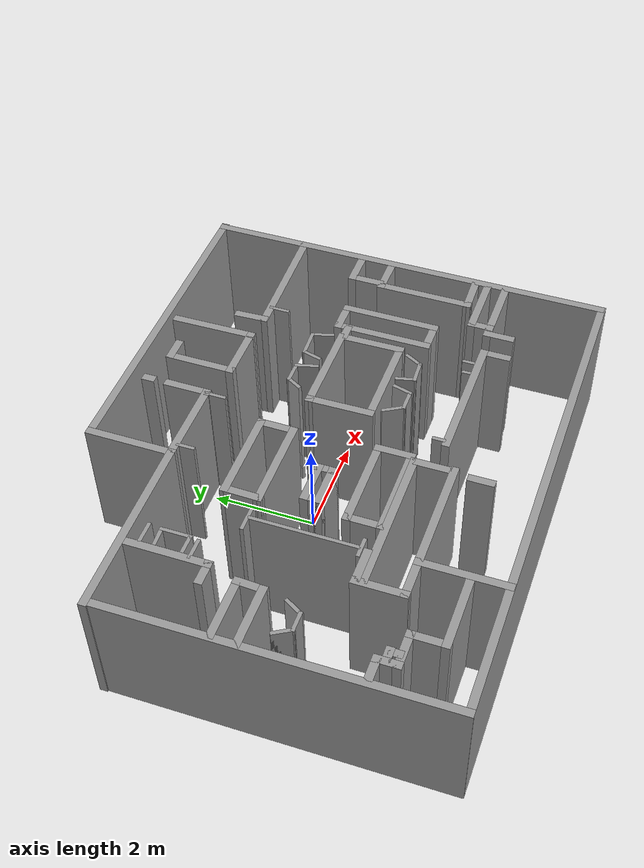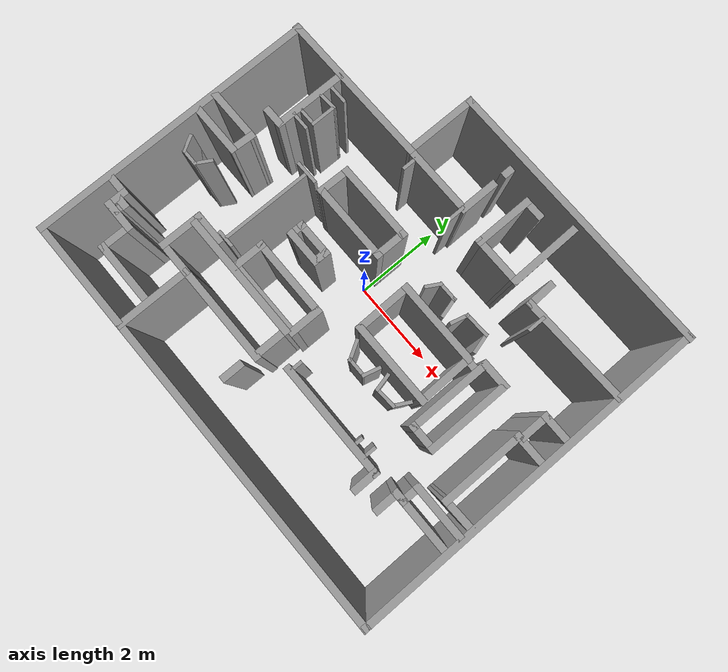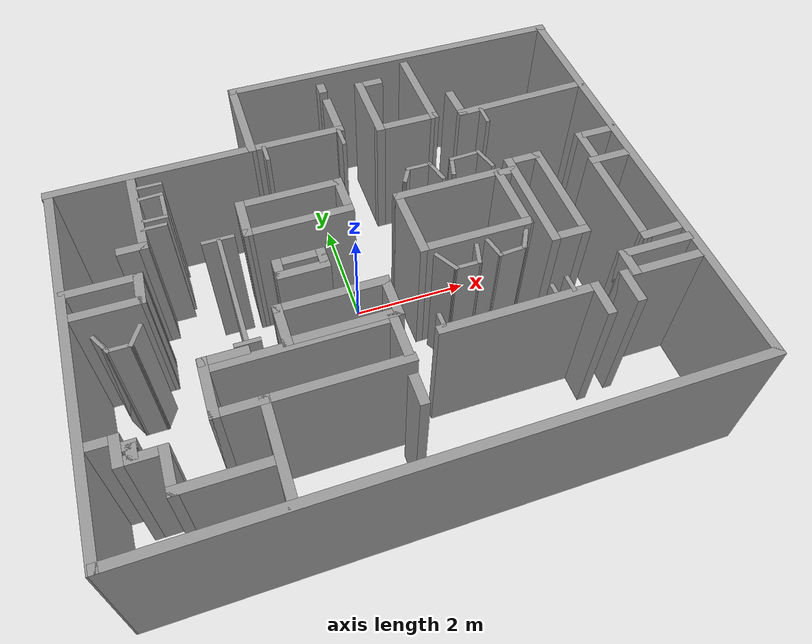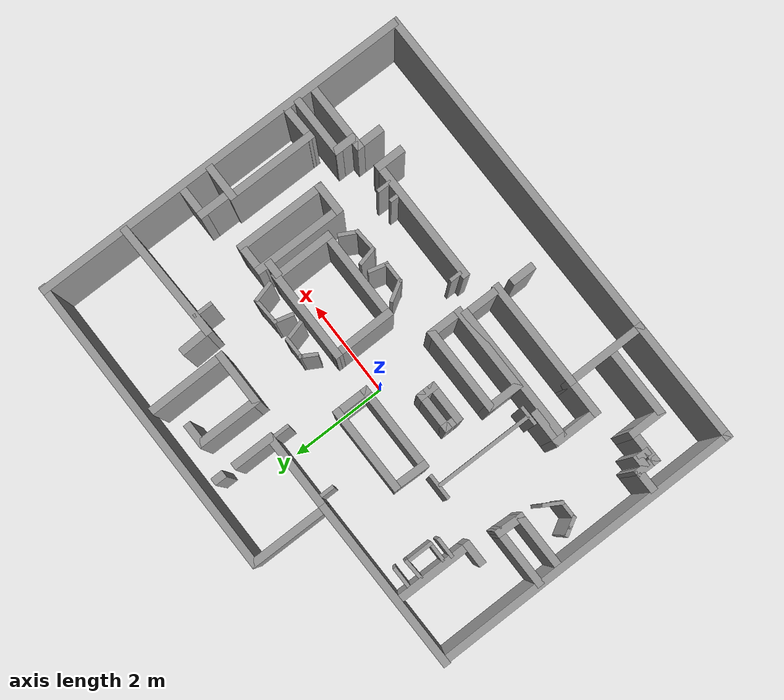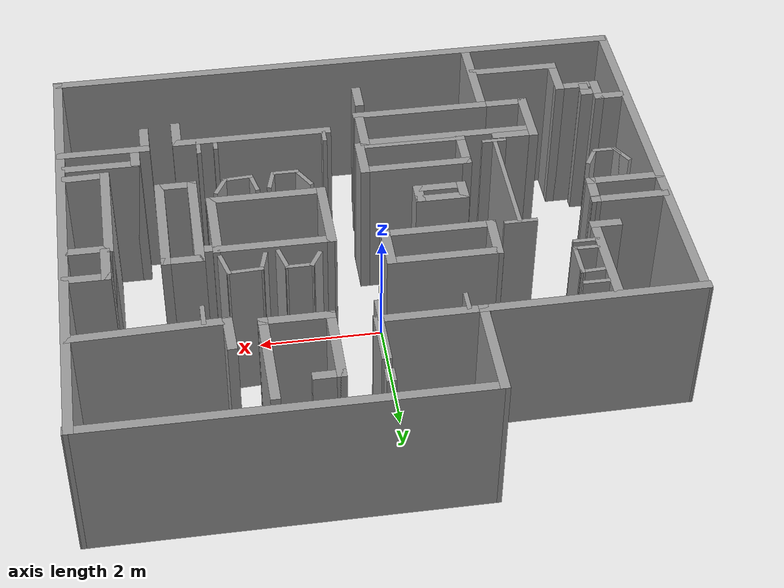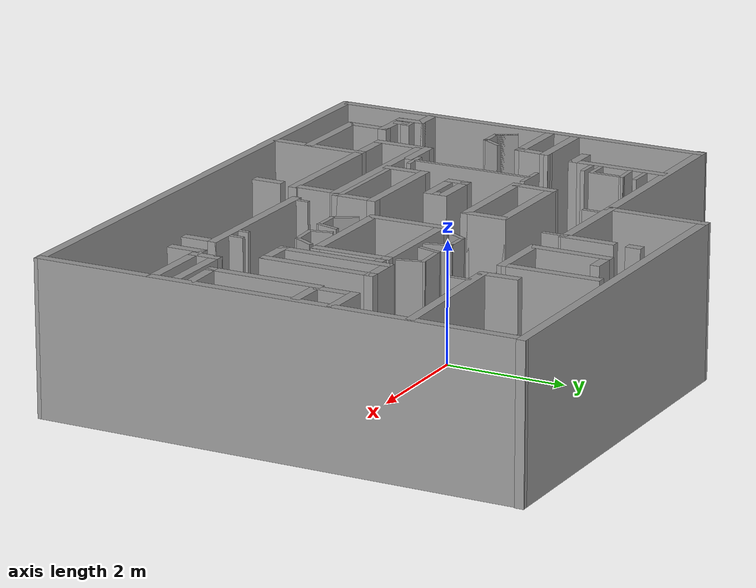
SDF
<sdf version="1.6">
 <model name="room4">
  <pose>0.183294 -0.251584 0 0 -0 0</pose>
  <link name="Wall_0">
   <collision name="Wall_0_Collision">
    <geometry><box><size>8.014 0.15 2.5</size></box></geometry>
    <pose>0 0 1.25 0 -0 0</pose>
   </collision>
   <visual name="Wall_0_Visual">
    <pose>0 0 1.25 0 -0 0</pose>
    <geometry><box><size>8.014 0.15 2.5</size></box></geometry>
    <material>
     <script><uri>file://media/materials/scripts/gazebo.material</uri><name>Gazebo/Grey</name></script>
     <ambient>1 1 1 1</ambient>
    </material>
    <meta><layer>0</layer></meta>
   </visual>
   <pose>4.74429 0.03461 0 0 -0 -1.56965</pose>
  </link>
  <link name="Wall_1">
   <collision name="Wall_1_Collision">
    <geometry><box><size>9.58911 0.15 2.5</size></box></geometry>
    <pose>0 0 1.25 0 -0 0</pose>
   </collision>
   <visual name="Wall_1_Visual">
    <pose>0 0 1.25 0 -0 0</pose>
    <geometry><box><size>9.58911 0.15 2.5</size></box></geometry>
    <material>
     <script><uri>file://media/materials/scripts/gazebo.material</uri><name>Gazebo/Grey</name></script>
     <ambient>1 1 1 1</ambient>
    </material>
    <meta><layer>0</layer></meta>
   </visual>
   <pose>0.029286 -3.94339 0 0 -0 -3.13672</pose>
  </link>
  <link name="Wall_10">
   <collision name="Wall_10_Collision">
    <geometry><box><size>1.65013 0.15 2.5</size></box></geometry>
    <pose>0 0 1.25 0 -0 0</pose>
   </collision>
   <visual name="Wall_10_Visual">
    <pose>0 0 1.25 0 -0 0</pose>
    <geometry><box><size>1.65013 0.15 2.5</size></box></geometry>
    <material>
     <script><uri>file://media/materials/scripts/gazebo.material</uri><name>Gazebo/Grey</name></script>
     <ambient>1 1 1 1</ambient>
    </material>
    <meta><layer>0</layer></meta>
   </visual>
   <pose>1.86988 2.9697 0 0 -0 -1.55746</pose>
  </link>
  <link name="Wall_101">
   <collision name="Wall_101_Collision">
    <geometry><box><size>0.5 0.15 2.5</size></box></geometry>
    <pose>0 0 1.25 0 -0 0</pose>
   </collision>
   <visual name="Wall_101_Visual">
    <pose>0 0 1.25 0 -0 0</pose>
    <geometry><box><size>0.5 0.15 2.5</size></box></geometry>
    <material>
     <script><uri>file://media/materials/scripts/gazebo.material</uri><name>Gazebo/Grey</name></script>
     <ambient>1 1 1 1</ambient>
    </material>
    <meta><layer>0</layer></meta>
   </visual>
   <pose>-0.238275 -2.90211 0 0 -0 1.5708</pose>
  </link>
  <link name="Wall_103">
   <collision name="Wall_103_Collision">
    <geometry><box><size>0.85 0.15 2.5</size></box></geometry>
    <pose>0 0 1.25 0 -0 0</pose>
   </collision>
   <visual name="Wall_103_Visual">
    <pose>0 0 1.25 0 -0 0</pose>
    <geometry><box><size>0.85 0.15 2.5</size></box></geometry>
    <material>
     <script><uri>file://media/materials/scripts/gazebo.material</uri><name>Gazebo/Grey</name></script>
     <ambient>1 1 1 1</ambient>
    </material>
    <meta><layer>0</layer></meta>
   </visual>
   <pose>-1.20078 -0.157139 0 0 -0 0</pose>
  </link>
  <link name="Wall_105">
   <collision name="Wall_105_Collision">
    <geometry><box><size>0.4 0.15 2.5</size></box></geometry>
    <pose>0 0 1.25 0 -0 0</pose>
   </collision>
   <visual name="Wall_105_Visual">
    <pose>0 0 1.25 0 -0 0</pose>
    <geometry><box><size>0.4 0.15 2.5</size></box></geometry>
    <material>
     <script><uri>file://media/materials/scripts/gazebo.material</uri><name>Gazebo/Grey</name></script>
     <ambient>1 1 1 1</ambient>
    </material>
    <meta><layer>0</layer></meta>
   </visual>
   <pose>-0.850776 -0.282139 0 0 -0 -1.5708</pose>
  </link>
  <link name="Wall_109">
   <collision name="Wall_109_Collision">
    <geometry><box><size>0.4 0.15 2.5</size></box></geometry>
    <pose>0 0 1.25 0 -0 0</pose>
   </collision>
   <visual name="Wall_109_Visual">
    <pose>0 0 1.25 0 -0 0</pose>
    <geometry><box><size>0.4 0.15 2.5</size></box></geometry>
    <material>
     <script><uri>file://media/materials/scripts/gazebo.material</uri><name>Gazebo/Grey</name></script>
     <ambient>1 1 1 1</ambient>
    </material>
    <meta><layer>0</layer></meta>
   </visual>
   <pose>-1.55078 -0.282139 0 0 -0 -1.5708</pose>
  </link>
  <link name="Wall_11">
   <collision name="Wall_11_Collision">
    <geometry><box><size>1.15 0.15 2.5</size></box></geometry>
    <pose>0 0 1.25 0 -0 0</pose>
   </collision>
   <visual name="Wall_11_Visual">
    <pose>0 0 1.25 0 -0 0</pose>
    <geometry><box><size>1.15 0.15 2.5</size></box></geometry>
    <material>
     <script><uri>file://media/materials/scripts/gazebo.material</uri><name>Gazebo/Grey</name></script>
     <ambient>1 1 1 1</ambient>
    </material>
    <meta><layer>0</layer></meta>
   </visual>
   <pose>1.37988 2.2197 0 0 -0 3.14159</pose>
  </link>
  <link name="Wall_116">
   <collision name="Wall_116_Collision">
    <geometry><box><size>0.85 0.15 2.5</size></box></geometry>
    <pose>0 0 1.25 0 -0 0</pose>
   </collision>
   <visual name="Wall_116_Visual">
    <pose>0 0 1.25 0 -0 0</pose>
    <geometry><box><size>0.85 0.15 2.5</size></box></geometry>
    <material>
     <script><uri>file://media/materials/scripts/gazebo.material</uri><name>Gazebo/Grey</name></script>
     <ambient>1 1 1 1</ambient>
    </material>
    <meta><layer>0</layer></meta>
   </visual>
   <pose>-1.20078 -0.407139 0 0 -0 0</pose>
  </link>
  <link name="Wall_118">
   <collision name="Wall_118_Collision">
    <geometry><box><size>0.35 0.07 2.5</size></box></geometry>
    <pose>0 0 1.25 0 -0 0</pose>
   </collision>
   <visual name="Wall_118_Visual">
    <pose>0 0 1.25 0 -0 0</pose>
    <geometry><box><size>0.35 0.07 2.5</size></box></geometry>
    <material>
     <script><uri>file://media/materials/scripts/gazebo.material</uri><name>Gazebo/Grey</name></script>
     <ambient>1 1 1 1</ambient>
    </material>
    <meta><layer>0</layer></meta>
   </visual>
   <pose>-1.15474 2.22246 0 0 -0 1.5708</pose>
  </link>
  <link name="Wall_126">
   <collision name="Wall_126_Collision">
    <geometry><box><size>0.43 0.07 2.5</size></box></geometry>
    <pose>0 0 1.25 0 -0 0</pose>
   </collision>
   <visual name="Wall_126_Visual">
    <pose>0 0 1.25 0 -0 0</pose>
    <geometry><box><size>0.43 0.07 2.5</size></box></geometry>
    <material>
     <script><uri>file://media/materials/scripts/gazebo.material</uri><name>Gazebo/Grey</name></script>
     <ambient>1 1 1 1</ambient>
    </material>
    <meta><layer>0</layer></meta>
   </visual>
   <pose>0.176827 2.23103 0 0 -0 -1.5708</pose>
  </link>
  <link name="Wall_128">
   <collision name="Wall_128_Collision">
    <geometry><box><size>0.4 0.07 2.5</size></box></geometry>
    <pose>0 0 1.25 0 -0 0</pose>
   </collision>
   <visual name="Wall_128_Visual">
    <pose>0 0 1.25 0 -0 0</pose>
    <geometry><box><size>0.4 0.07 2.5</size></box></geometry>
    <material>
     <script><uri>file://media/materials/scripts/gazebo.material</uri><name>Gazebo/Grey</name></script>
     <ambient>1 1 1 1</ambient>
    </material>
    <meta><layer>0</layer></meta>
   </visual>
   <pose>2.73621 1.96934 0 0 -0 -1.5708</pose>
  </link>
  <link name="Wall_13">
   <collision name="Wall_13_Collision">
    <geometry><box><size>1.35 0.15 2.5</size></box></geometry>
    <pose>0 0 1.25 0 -0 0</pose>
   </collision>
   <visual name="Wall_13_Visual">
    <pose>0 0 1.25 0 -0 0</pose>
    <geometry><box><size>1.35 0.15 2.5</size></box></geometry>
    <material>
     <script><uri>file://media/materials/scripts/gazebo.material</uri><name>Gazebo/Grey</name></script>
     <ambient>1 1 1 1</ambient>
    </material>
    <meta><layer>0</layer></meta>
   </visual>
   <pose>0.87988 2.8197 0 0 -0 1.5708</pose>
  </link>
  <link name="Wall_130">
   <collision name="Wall_130_Collision">
    <geometry><box><size>2.6 0.15 2.5</size></box></geometry>
    <pose>0 0 1.25 0 -0 0</pose>
   </collision>
   <visual name="Wall_130_Visual">
    <pose>0 0 1.25 0 -0 0</pose>
    <geometry><box><size>2.6 0.15 2.5</size></box></geometry>
    <material>
     <script><uri>file://media/materials/scripts/gazebo.material</uri><name>Gazebo/Grey</name></script>
     <ambient>1 1 1 1</ambient>
    </material>
    <meta><layer>0</layer></meta>
   </visual>
   <pose>1.62664 -2.08518 0 0 -0 0</pose>
  </link>
  <link name="Wall_132">
   <collision name="Wall_132_Collision">
    <geometry><box><size>0.25 0.07 2.5</size></box></geometry>
    <pose>0 0 1.25 0 -0 0</pose>
   </collision>
   <visual name="Wall_132_Visual">
    <pose>0 0 1.25 0 -0 0</pose>
    <geometry><box><size>0.25 0.07 2.5</size></box></geometry>
    <material>
     <script><uri>file://media/materials/scripts/gazebo.material</uri><name>Gazebo/Grey</name></script>
     <ambient>1 1 1 1</ambient>
    </material>
    <meta><layer>0</layer></meta>
   </visual>
   <pose>0.453516 -1.93307 0 0 -0 -1.5708</pose>
  </link>
  <link name="Wall_134">
   <collision name="Wall_134_Collision">
    <geometry><box><size>0.170242 0.07 2.5</size></box></geometry>
    <pose>0 0 1.25 0 -0 0</pose>
   </collision>
   <visual name="Wall_134_Visual">
    <pose>0 0 1.25 0 -0 0</pose>
    <geometry><box><size>0.170242 0.07 2.5</size></box></geometry>
    <material>
     <script><uri>file://media/materials/scripts/gazebo.material</uri><name>Gazebo/Grey</name></script>
     <ambient>1 1 1 1</ambient>
    </material>
    <meta><layer>0</layer></meta>
   </visual>
   <pose>2.23471 -1.92742 0 0 -0 -1.5708</pose>
  </link>
  <link name="Wall_136">
   <collision name="Wall_136_Collision">
    <geometry><box><size>0.3 0.07 2.5</size></box></geometry>
    <pose>0 0 1.25 0 -0 0</pose>
   </collision>
   <visual name="Wall_136_Visual">
    <pose>0 0 1.25 0 -0 0</pose>
    <geometry><box><size>0.3 0.07 2.5</size></box></geometry>
    <material>
     <script><uri>file://media/materials/scripts/gazebo.material</uri><name>Gazebo/Grey</name></script>
     <ambient>1 1 1 1</ambient>
    </material>
    <meta><layer>0</layer></meta>
   </visual>
   <pose>2.51095 -1.92354 0 0 -0 -1.5708</pose>
  </link>
  <link name="Wall_138">
   <collision name="Wall_138_Collision">
    <geometry><box><size>0.6 0.15 2.5</size></box></geometry>
    <pose>0 0 1.25 0 -0 0</pose>
   </collision>
   <visual name="Wall_138_Visual">
    <pose>0 0 1.25 0 -0 0</pose>
    <geometry><box><size>0.6 0.15 2.5</size></box></geometry>
    <material>
     <script><uri>file://media/materials/scripts/gazebo.material</uri><name>Gazebo/Grey</name></script>
     <ambient>1 1 1 1</ambient>
    </material>
    <meta><layer>0</layer></meta>
   </visual>
   <pose>2.85164 -2.31018 0 0 -0 -1.5708</pose>
  </link>
  <link name="Wall_140">
   <collision name="Wall_140_Collision">
    <geometry><box><size>1.5 0.15 2.5</size></box></geometry>
    <pose>0 0 1.25 0 -0 0</pose>
   </collision>
   <visual name="Wall_140_Visual">
    <pose>0 0 1.25 0 -0 0</pose>
    <geometry><box><size>1.5 0.15 2.5</size></box></geometry>
    <material>
     <script><uri>file://media/materials/scripts/gazebo.material</uri><name>Gazebo/Grey</name></script>
     <ambient>1 1 1 1</ambient>
    </material>
    <meta><layer>0</layer></meta>
   </visual>
   <pose>4.04991 -2.016 0 0 -0 3.14159</pose>
  </link>
  <link name="Wall_141">
   <collision name="Wall_141_Collision">
    <geometry><box><size>0.6 0.15 2.5</size></box></geometry>
    <pose>0 0 1.25 0 -0 0</pose>
   </collision>
   <visual name="Wall_141_Visual">
    <pose>0 0 1.25 0 -0 0</pose>
    <geometry><box><size>0.6 0.15 2.5</size></box></geometry>
    <material>
     <script><uri>file://media/materials/scripts/gazebo.material</uri><name>Gazebo/Grey</name></script>
     <ambient>1 1 1 1</ambient>
    </material>
    <meta><layer>0</layer></meta>
   </visual>
   <pose>3.37491 -2.241 0 0 -0 -1.5708</pose>
  </link>
  <link name="Wall_143">
   <collision name="Wall_143_Collision">
    <geometry><box><size>0.756466 0.15 2.5</size></box></geometry>
    <pose>0 0 1.25 0 -0 0</pose>
   </collision>
   <visual name="Wall_143_Visual">
    <pose>0 0 1.25 0 -0 0</pose>
    <geometry><box><size>0.756466 0.15 2.5</size></box></geometry>
    <material>
     <script><uri>file://media/materials/scripts/gazebo.material</uri><name>Gazebo/Grey</name></script>
     <ambient>1 1 1 1</ambient>
    </material>
    <meta><layer>0</layer></meta>
   </visual>
   <pose>4.35251 -1.41939 0 0 -0 -3.11309</pose>
  </link>
  <link name="Wall_145">
   <collision name="Wall_145_Collision">
    <geometry><box><size>1.9 0.15 2.5</size></box></geometry>
    <pose>0 0 1.25 0 -0 0</pose>
   </collision>
   <visual name="Wall_145_Visual">
    <pose>0 0 1.25 0 -0 0</pose>
    <geometry><box><size>1.9 0.15 2.5</size></box></geometry>
    <material>
     <script><uri>file://media/materials/scripts/gazebo.material</uri><name>Gazebo/Grey</name></script>
     <ambient>1 1 1 1</ambient>
    </material>
    <meta><layer>0</layer></meta>
   </visual>
   <pose>4.04927 -0.553037 0 0 -0 1.5708</pose>
  </link>
  <link name="Wall_147">
   <collision name="Wall_147_Collision">
    <geometry><box><size>0.67 0.15 2.5</size></box></geometry>
    <pose>0 0 1.25 0 -0 0</pose>
   </collision>
   <visual name="Wall_147_Visual">
    <pose>0 0 1.25 0 -0 0</pose>
    <geometry><box><size>0.67 0.15 2.5</size></box></geometry>
    <material>
     <script><uri>file://media/materials/scripts/gazebo.material</uri><name>Gazebo/Grey</name></script>
     <ambient>1 1 1 1</ambient>
    </material>
    <meta><layer>0</layer></meta>
   </visual>
   <pose>2.94433 -1.013 0 0 -0 0</pose>
  </link>
  <link name="Wall_149">
   <collision name="Wall_149_Collision">
    <geometry><box><size>1.9 0.15 2.5</size></box></geometry>
    <pose>0 0 1.25 0 -0 0</pose>
   </collision>
   <visual name="Wall_149_Visual">
    <pose>0 0 1.25 0 -0 0</pose>
    <geometry><box><size>1.9 0.15 2.5</size></box></geometry>
    <material>
     <script><uri>file://media/materials/scripts/gazebo.material</uri><name>Gazebo/Grey</name></script>
     <ambient>1 1 1 1</ambient>
    </material>
    <meta><layer>0</layer></meta>
   </visual>
   <pose>3.20433 -0.138003 0 0 -0 1.5708</pose>
  </link>
  <link name="Wall_15">
   <collision name="Wall_15_Collision">
    <geometry><box><size>0.9 0.15 2.5</size></box></geometry>
    <pose>0 0 1.25 0 -0 0</pose>
   </collision>
   <visual name="Wall_15_Visual">
    <pose>0 0 1.25 0 -0 0</pose>
    <geometry><box><size>0.9 0.15 2.5</size></box></geometry>
    <material>
     <script><uri>file://media/materials/scripts/gazebo.material</uri><name>Gazebo/Grey</name></script>
     <ambient>1 1 1 1</ambient>
    </material>
    <meta><layer>0</layer></meta>
   </visual>
   <pose>0.19988 2.7847 0 0 -0 -1.5708</pose>
  </link>
  <link name="Wall_151">
   <collision name="Wall_151_Collision">
    <geometry><box><size>0.75 0.15 2.5</size></box></geometry>
    <pose>0 0 1.25 0 -0 0</pose>
   </collision>
   <visual name="Wall_151_Visual">
    <pose>0 0 1.25 0 -0 0</pose>
    <geometry><box><size>0.75 0.15 2.5</size></box></geometry>
    <material>
     <script><uri>file://media/materials/scripts/gazebo.material</uri><name>Gazebo/Grey</name></script>
     <ambient>1 1 1 1</ambient>
    </material>
    <meta><layer>0</layer></meta>
   </visual>
   <pose>4.34927 0.321963 0 0 -0 0</pose>
  </link>
  <link name="Wall_153">
   <collision name="Wall_153_Collision">
    <geometry><box><size>0.75 0.15 2.5</size></box></geometry>
    <pose>0 0 1.25 0 -0 0</pose>
   </collision>
   <visual name="Wall_153_Visual">
    <pose>0 0 1.25 0 -0 0</pose>
    <geometry><box><size>0.75 0.15 2.5</size></box></geometry>
    <material>
     <script><uri>file://media/materials/scripts/gazebo.material</uri><name>Gazebo/Grey</name></script>
     <ambient>1 1 1 1</ambient>
    </material>
    <meta><layer>0</layer></meta>
   </visual>
   <pose>4.40762 0.941118 0 0 -0 3.14159</pose>
  </link>
  <link name="Wall_154">
   <collision name="Wall_154_Collision">
    <geometry><box><size>0.7 0.15 2.5</size></box></geometry>
    <pose>0 0 1.25 0 -0 0</pose>
   </collision>
   <visual name="Wall_154_Visual">
    <pose>0 0 1.25 0 -0 0</pose>
    <geometry><box><size>0.7 0.15 2.5</size></box></geometry>
    <material>
     <script><uri>file://media/materials/scripts/gazebo.material</uri><name>Gazebo/Grey</name></script>
     <ambient>1 1 1 1</ambient>
    </material>
    <meta><layer>0</layer></meta>
   </visual>
   <pose>4.10762 0.666118 0 0 -0 -1.5708</pose>
  </link>
  <link name="Wall_156">
   <collision name="Wall_156_Collision">
    <geometry><box><size>0.67 0.15 2.5</size></box></geometry>
    <pose>0 0 1.25 0 -0 0</pose>
   </collision>
   <visual name="Wall_156_Visual">
    <pose>0 0 1.25 0 -0 0</pose>
    <geometry><box><size>0.67 0.15 2.5</size></box></geometry>
    <material>
     <script><uri>file://media/materials/scripts/gazebo.material</uri><name>Gazebo/Grey</name></script>
     <ambient>1 1 1 1</ambient>
    </material>
    <meta><layer>0</layer></meta>
   </visual>
   <pose>2.94433 0.736997 0 0 -0 3.14159</pose>
  </link>
  <link name="Wall_159">
   <collision name="Wall_159_Collision">
    <geometry><box><size>1.9 0.15 2.5</size></box></geometry>
    <pose>0 0 1.25 0 -0 0</pose>
   </collision>
   <visual name="Wall_159_Visual">
    <pose>0 0 1.25 0 -0 0</pose>
    <geometry><box><size>1.9 0.15 2.5</size></box></geometry>
    <material>
     <script><uri>file://media/materials/scripts/gazebo.material</uri><name>Gazebo/Grey</name></script>
     <ambient>1 1 1 1</ambient>
    </material>
    <meta><layer>0</layer></meta>
   </visual>
   <pose>2.68433 -0.138003 0 0 -0 -1.5708</pose>
  </link>
  <link name="Wall_16">
   <collision name="Wall_16_Collision">
    <geometry><box><size>1.73309 0.15 2.5</size></box></geometry>
    <pose>0 0 1.25 0 -0 0</pose>
   </collision>
   <visual name="Wall_16_Visual">
    <pose>0 0 1.25 0 -0 0</pose>
    <geometry><box><size>1.73309 0.15 2.5</size></box></geometry>
    <material>
     <script><uri>file://media/materials/scripts/gazebo.material</uri><name>Gazebo/Grey</name></script>
     <ambient>1 1 1 1</ambient>
    </material>
    <meta><layer>0</layer></meta>
   </visual>
   <pose>-0.591667 2.40966 0 0 -0 -3.14153</pose>
  </link>
  <link name="Wall_18">
   <collision name="Wall_18_Collision">
    <geometry><box><size>0.25 0.15 2.5</size></box></geometry>
    <pose>0 0 1.25 0 -0 0</pose>
   </collision>
   <visual name="Wall_18_Visual">
    <pose>0 0 1.25 0 -0 0</pose>
    <geometry><box><size>0.25 0.15 2.5</size></box></geometry>
    <material>
     <script><uri>file://media/materials/scripts/gazebo.material</uri><name>Gazebo/Grey</name></script>
     <ambient>1 1 1 1</ambient>
    </material>
    <meta><layer>0</layer></meta>
   </visual>
   <pose>0.19988 3.5497 0 0 -0 -1.5708</pose>
  </link>
  <link name="Wall_2">
   <collision name="Wall_2_Collision">
    <geometry><box><size>6.50004 0.15 2.5</size></box></geometry>
    <pose>0 0 1.25 0 -0 0</pose>
   </collision>
   <visual name="Wall_2_Visual">
    <pose>0 0 1.25 0 -0 0</pose>
    <geometry><box><size>6.50004 0.15 2.5</size></box></geometry>
    <material>
     <script><uri>file://media/materials/scripts/gazebo.material</uri><name>Gazebo/Grey</name></script>
     <ambient>1 1 1 1</ambient>
    </material>
    <meta><layer>0</layer></meta>
   </visual>
   <pose>-4.72471 -0.79139 0 0 -0 1.57442</pose>
  </link>
  <link name="Wall_20">
   <collision name="Wall_20_Collision">
    <geometry><box><size>0.5 0.15 2.5</size></box></geometry>
    <pose>0 0 1.25 0 -0 0</pose>
   </collision>
   <visual name="Wall_20_Visual">
    <pose>0 0 1.25 0 -0 0</pose>
    <geometry><box><size>0.5 0.15 2.5</size></box></geometry>
    <material>
     <script><uri>file://media/materials/scripts/gazebo.material</uri><name>Gazebo/Grey</name></script>
     <ambient>1 1 1 1</ambient>
    </material>
    <meta><layer>0</layer></meta>
   </visual>
   <pose>1.05488 3.4197 0 0 -0 0</pose>
  </link>
  <link name="Wall_22">
   <collision name="Wall_22_Collision">
    <geometry><box><size>1.65 0.15 2.5</size></box></geometry>
    <pose>0 0 1.25 0 -0 0</pose>
   </collision>
   <visual name="Wall_22_Visual">
    <pose>0 0 1.25 0 -0 0</pose>
    <geometry><box><size>1.65 0.15 2.5</size></box></geometry>
    <material>
     <script><uri>file://media/materials/scripts/gazebo.material</uri><name>Gazebo/Grey</name></script>
     <ambient>1 1 1 1</ambient>
    </material>
    <meta><layer>0</layer></meta>
   </visual>
   <pose>-3.42012 1.5697 0 0 -0 -1.5708</pose>
  </link>
  <link name="Wall_23">
   <collision name="Wall_23_Collision">
    <geometry><box><size>0.5 0.15 2.5</size></box></geometry>
    <pose>0 0 1.25 0 -0 0</pose>
   </collision>
   <visual name="Wall_23_Visual">
    <pose>0 0 1.25 0 -0 0</pose>
    <geometry><box><size>0.5 0.15 2.5</size></box></geometry>
    <material>
     <script><uri>file://media/materials/scripts/gazebo.material</uri><name>Gazebo/Grey</name></script>
     <ambient>1 1 1 1</ambient>
    </material>
    <meta><layer>0</layer></meta>
   </visual>
   <pose>-3.59512 0.819703 0 0 -0 3.14159</pose>
  </link>
  <link name="Wall_25">
   <collision name="Wall_25_Collision">
    <geometry><box><size>0.420174 0.07 2.5</size></box></geometry>
    <pose>0 0 1.25 0 -0 0</pose>
   </collision>
   <visual name="Wall_25_Visual">
    <pose>0 0 1.25 0 -0 0</pose>
    <geometry><box><size>0.420174 0.07 2.5</size></box></geometry>
    <material>
     <script><uri>file://media/materials/scripts/gazebo.material</uri><name>Gazebo/Grey</name></script>
     <ambient>1 1 1 1</ambient>
    </material>
    <meta><layer>0</layer></meta>
   </visual>
   <pose>-3.20529 1.15958 0 0 -0 0</pose>
  </link>
  <link name="Wall_252">
   <collision name="Wall_252_Collision">
    <geometry><box><size>0.5 0.15 2.5</size></box></geometry>
    <pose>0 0 1.25 0 -0 0</pose>
   </collision>
   <visual name="Wall_252_Visual">
    <pose>0 0 1.25 0 -0 0</pose>
    <geometry><box><size>0.5 0.15 2.5</size></box></geometry>
    <material>
     <script><uri>file://media/materials/scripts/gazebo.material</uri><name>Gazebo/Grey</name></script>
     <ambient>1 1 1 1</ambient>
    </material>
    <meta><layer>0</layer></meta>
   </visual>
   <pose>3.54609 -1.83378 0 0 -0 -1.5708</pose>
  </link>
  <link name="Wall_254">
   <collision name="Wall_254_Collision">
    <geometry><box><size>1.25 0.15 2.5</size></box></geometry>
    <pose>0 0 1.25 0 -0 0</pose>
   </collision>
   <visual name="Wall_254_Visual">
    <pose>0 0 1.25 0 -0 0</pose>
    <geometry><box><size>1.25 0.15 2.5</size></box></geometry>
    <material>
     <script><uri>file://media/materials/scripts/gazebo.material</uri><name>Gazebo/Grey</name></script>
     <ambient>1 1 1 1</ambient>
    </material>
    <meta><layer>0</layer></meta>
   </visual>
   <pose>4.09609 -1.65878 0 0 -0 0</pose>
  </link>
  <link name="Wall_256">
   <collision name="Wall_256_Collision">
    <geometry><box><size>1.30339 0.15 2.5</size></box></geometry>
    <pose>0 0 1.25 0 -0 0</pose>
   </collision>
   <visual name="Wall_256_Visual">
    <pose>0 0 1.25 0 -0 0</pose>
    <geometry><box><size>1.30339 0.15 2.5</size></box></geometry>
    <material>
     <script><uri>file://media/materials/scripts/gazebo.material</uri><name>Gazebo/Grey</name></script>
     <ambient>1 1 1 1</ambient>
    </material>
    <meta><layer>0</layer></meta>
   </visual>
   <pose>0.662227 -0.002843 0 0 -0 -1.55879</pose>
  </link>
  <link name="Wall_257">
   <collision name="Wall_257_Collision">
    <geometry><box><size>1.9 0.15 2.5</size></box></geometry>
    <pose>0 0 1.25 0 -0 0</pose>
   </collision>
   <visual name="Wall_257_Visual">
    <pose>0 0 1.25 0 -0 0</pose>
    <geometry><box><size>1.9 0.15 2.5</size></box></geometry>
    <material>
     <script><uri>file://media/materials/scripts/gazebo.material</uri><name>Gazebo/Grey</name></script>
     <ambient>1 1 1 1</ambient>
    </material>
    <meta><layer>0</layer></meta>
   </visual>
   <pose>1.55106 -0.57903 0 0 -0 0</pose>
  </link>
  <link name="Wall_259">
   <collision name="Wall_259_Collision">
    <geometry><box><size>1.9 0.15 2.5</size></box></geometry>
    <pose>0 0 1.25 0 -0 0</pose>
   </collision>
   <visual name="Wall_259_Visual">
    <pose>0 0 1.25 0 -0 0</pose>
    <geometry><box><size>1.9 0.15 2.5</size></box></geometry>
    <material>
     <script><uri>file://media/materials/scripts/gazebo.material</uri><name>Gazebo/Grey</name></script>
     <ambient>1 1 1 1</ambient>
    </material>
    <meta><layer>0</layer></meta>
   </visual>
   <pose>1.53031 0.573344 0 0 -0 0</pose>
  </link>
  <link name="Wall_261">
   <collision name="Wall_261_Collision">
    <geometry><box><size>1.30339 0.15 2.5</size></box></geometry>
    <pose>0 0 1.25 0 -0 0</pose>
   </collision>
   <visual name="Wall_261_Visual">
    <pose>0 0 1.25 0 -0 0</pose>
    <geometry><box><size>1.30339 0.15 2.5</size></box></geometry>
    <material>
     <script><uri>file://media/materials/scripts/gazebo.material</uri><name>Gazebo/Grey</name></script>
     <ambient>1 1 1 1</ambient>
    </material>
    <meta><layer>0</layer></meta>
   </visual>
   <pose>2.41223 -0.002843 0 0 -0 -1.55879</pose>
  </link>
  <link name="Wall_265">
   <collision name="Wall_265_Collision">
    <geometry><box><size>0.35 0.15 2.5</size></box></geometry>
    <pose>0 0 1.25 0 -0 0</pose>
   </collision>
   <visual name="Wall_265_Visual">
    <pose>0 0 1.25 0 -0 0</pose>
    <geometry><box><size>0.35 0.15 2.5</size></box></geometry>
    <material>
     <script><uri>file://media/materials/scripts/gazebo.material</uri><name>Gazebo/Grey</name></script>
     <ambient>1 1 1 1</ambient>
    </material>
    <meta><layer>0</layer></meta>
   </visual>
   <pose>2.54833 0.536752 0 0 -0 0</pose>
  </link>
  <link name="Wall_267">
   <collision name="Wall_267_Collision">
    <geometry><box><size>0.35 0.07 2.5</size></box></geometry>
    <pose>0 0 1.25 0 -0 0</pose>
   </collision>
   <visual name="Wall_267_Visual">
    <pose>0 0 1.25 0 -0 0</pose>
    <geometry><box><size>0.35 0.07 2.5</size></box></geometry>
    <material>
     <script><uri>file://media/materials/scripts/gazebo.material</uri><name>Gazebo/Grey</name></script>
     <ambient>1 1 1 1</ambient>
    </material>
    <meta><layer>0</layer></meta>
   </visual>
   <pose>0.944863 0.987325 0 0 -0 1.0472</pose>
  </link>
  <link name="Wall_271">
   <collision name="Wall_271_Collision">
    <geometry><box><size>0.45 0.07 2.5</size></box></geometry>
    <pose>0 0 1.25 0 -0 0</pose>
   </collision>
   <visual name="Wall_271_Visual">
    <pose>0 0 1.25 0 -0 0</pose>
    <geometry><box><size>0.45 0.07 2.5</size></box></geometry>
    <material>
     <script><uri>file://media/materials/scripts/gazebo.material</uri><name>Gazebo/Grey</name></script>
     <ambient>1 1 1 1</ambient>
    </material>
    <meta><layer>0</layer></meta>
   </visual>
   <pose>1.20486 1.10857 0 0 -0 0</pose>
  </link>
  <link name="Wall_273">
   <collision name="Wall_273_Collision">
    <geometry><box><size>0.45 0.07 2.5</size></box></geometry>
    <pose>0 0 1.25 0 -0 0</pose>
   </collision>
   <visual name="Wall_273_Visual">
    <pose>0 0 1.25 0 -0 0</pose>
    <geometry><box><size>0.45 0.07 2.5</size></box></geometry>
    <material>
     <script><uri>file://media/materials/scripts/gazebo.material</uri><name>Gazebo/Grey</name></script>
     <ambient>1 1 1 1</ambient>
    </material>
    <meta><layer>0</layer></meta>
   </visual>
   <pose>1.44404 0.925043 0 0 -0 -1.309</pose>
  </link>
  <link name="Wall_275">
   <collision name="Wall_275_Collision">
    <geometry><box><size>0.4 0.07 2.5</size></box></geometry>
    <pose>0 0 1.25 0 -0 0</pose>
   </collision>
   <visual name="Wall_275_Visual">
    <pose>0 0 1.25 0 -0 0</pose>
    <geometry><box><size>0.4 0.07 2.5</size></box></geometry>
    <material>
     <script><uri>file://media/materials/scripts/gazebo.material</uri><name>Gazebo/Grey</name></script>
     <ambient>1 1 1 1</ambient>
    </material>
    <meta><layer>0</layer></meta>
   </visual>
   <pose>1.74089 0.933979 0 0 -0 1.309</pose>
  </link>
  <link name="Wall_279">
   <collision name="Wall_279_Collision">
    <geometry><box><size>0.568674 0.07 2.5</size></box></geometry>
    <pose>0 0 1.25 0 -0 0</pose>
   </collision>
   <visual name="Wall_279_Visual">
    <pose>0 0 1.25 0 -0 0</pose>
    <geometry><box><size>0.568674 0.07 2.5</size></box></geometry>
    <material>
     <script><uri>file://media/materials/scripts/gazebo.material</uri><name>Gazebo/Grey</name></script>
     <ambient>1 1 1 1</ambient>
    </material>
    <meta><layer>0</layer></meta>
   </visual>
   <pose>2.03278 1.10565 0 0 -0 0.049307</pose>
  </link>
  <link name="Wall_28">
   <collision name="Wall_28_Collision">
    <geometry><box><size>0.420571 0.07 2.5</size></box></geometry>
    <pose>0 0 1.25 0 -0 0</pose>
   </collision>
   <visual name="Wall_28_Visual">
    <pose>0 0 1.25 0 -0 0</pose>
    <geometry><box><size>0.420571 0.07 2.5</size></box></geometry>
    <material>
     <script><uri>file://media/materials/scripts/gazebo.material</uri><name>Gazebo/Grey</name></script>
     <ambient>1 1 1 1</ambient>
    </material>
    <meta><layer>0</layer></meta>
   </visual>
   <pose>-3.16529 1.82958 0 0 -0 0.057081</pose>
  </link>
  <link name="Wall_281">
   <collision name="Wall_281_Collision">
    <geometry><box><size>0.45 0.07 2.5</size></box></geometry>
    <pose>0 0 1.25 0 -0 0</pose>
   </collision>
   <visual name="Wall_281_Visual">
    <pose>0 0 1.25 0 -0 0</pose>
    <geometry><box><size>0.45 0.07 2.5</size></box></geometry>
    <material>
     <script><uri>file://media/materials/scripts/gazebo.material</uri><name>Gazebo/Grey</name></script>
     <ambient>1 1 1 1</ambient>
    </material>
    <meta><layer>0</layer></meta>
   </visual>
   <pose>2.33113 0.934424 0 0 -0 -1.309</pose>
  </link>
  <link name="Wall_283">
   <collision name="Wall_283_Collision">
    <geometry><box><size>0.4 0.07 2.5</size></box></geometry>
    <pose>0 0 1.25 0 -0 0</pose>
   </collision>
   <visual name="Wall_283_Visual">
    <pose>0 0 1.25 0 -0 0</pose>
    <geometry><box><size>0.4 0.07 2.5</size></box></geometry>
    <material>
     <script><uri>file://media/materials/scripts/gazebo.material</uri><name>Gazebo/Grey</name></script>
     <ambient>1 1 1 1</ambient>
    </material>
    <meta><layer>0</layer></meta>
   </visual>
   <pose>1.42562 -0.947992 0 0 -0 -1.8326</pose>
  </link>
  <link name="Wall_285">
   <collision name="Wall_285_Collision">
    <geometry><box><size>0.45 0.07 2.5</size></box></geometry>
    <pose>0 0 1.25 0 -0 0</pose>
   </collision>
   <visual name="Wall_285_Visual">
    <pose>0 0 1.25 0 -0 0</pose>
    <geometry><box><size>0.45 0.07 2.5</size></box></geometry>
    <material>
     <script><uri>file://media/materials/scripts/gazebo.material</uri><name>Gazebo/Grey</name></script>
     <ambient>1 1 1 1</ambient>
    </material>
    <meta><layer>0</layer></meta>
   </visual>
   <pose>1.19291 -1.10737 0 0 -0 3.14159</pose>
  </link>
  <link name="Wall_287">
   <collision name="Wall_287_Collision">
    <geometry><box><size>0.45 0.07 2.5</size></box></geometry>
    <pose>0 0 1.25 0 -0 0</pose>
   </collision>
   <visual name="Wall_287_Visual">
    <pose>0 0 1.25 0 -0 0</pose>
    <geometry><box><size>0.45 0.07 2.5</size></box></geometry>
    <material>
     <script><uri>file://media/materials/scripts/gazebo.material</uri><name>Gazebo/Grey</name></script>
     <ambient>1 1 1 1</ambient>
    </material>
    <meta><layer>0</layer></meta>
   </visual>
   <pose>0.907915 -0.942825 0 0 -0 2.0944</pose>
  </link>
  <link name="Wall_29">
   <collision name="Wall_29_Collision">
    <geometry><box><size>0.59 0.07 2.5</size></box></geometry>
    <pose>0 0 1.25 0 -0 0</pose>
   </collision>
   <visual name="Wall_29_Visual">
    <pose>0 0 1.25 0 -0 0</pose>
    <geometry><box><size>0.59 0.07 2.5</size></box></geometry>
    <material>
     <script><uri>file://media/materials/scripts/gazebo.material</uri><name>Gazebo/Grey</name></script>
     <ambient>1 1 1 1</ambient>
    </material>
    <meta><layer>0</layer></meta>
   </visual>
   <pose>-2.99029 1.57958 0 0 -0 -1.5708</pose>
  </link>
  <link name="Wall_290">
   <collision name="Wall_290_Collision">
    <geometry><box><size>0.392958 0.07 2.5</size></box></geometry>
    <pose>0 0 1.25 0 -0 0</pose>
   </collision>
   <visual name="Wall_290_Visual">
    <pose>0 0 1.25 0 -0 0</pose>
    <geometry><box><size>0.392958 0.07 2.5</size></box></geometry>
    <material>
     <script><uri>file://media/materials/scripts/gazebo.material</uri><name>Gazebo/Grey</name></script>
     <ambient>1 1 1 1</ambient>
    </material>
    <meta><layer>0</layer></meta>
   </visual>
   <pose>2.23538 -0.902968 0 0 -0 -2.06676</pose>
  </link>
  <link name="Wall_292">
   <collision name="Wall_292_Collision">
    <geometry><box><size>0.485706 0.07 2.5</size></box></geometry>
    <pose>0 0 1.25 0 -0 0</pose>
   </collision>
   <visual name="Wall_292_Visual">
    <pose>0 0 1.25 0 -0 0</pose>
    <geometry><box><size>0.485706 0.07 2.5</size></box></geometry>
    <material>
     <script><uri>file://media/materials/scripts/gazebo.material</uri><name>Gazebo/Grey</name></script>
     <ambient>1 1 1 1</ambient>
    </material>
    <meta><layer>0</layer></meta>
   </visual>
   <pose>1.9508 -1.06568 0 0 -0 -3.07539</pose>
  </link>
  <link name="Wall_294">
   <collision name="Wall_294_Collision">
    <geometry><box><size>0.4 0.07 2.5</size></box></geometry>
    <pose>0 0 1.25 0 -0 0</pose>
   </collision>
   <visual name="Wall_294_Visual">
    <pose>0 0 1.25 0 -0 0</pose>
    <geometry><box><size>0.4 0.07 2.5</size></box></geometry>
    <material>
     <script><uri>file://media/materials/scripts/gazebo.material</uri><name>Gazebo/Grey</name></script>
     <ambient>1 1 1 1</ambient>
    </material>
    <meta><layer>0</layer></meta>
   </visual>
   <pose>1.70604 -0.91866 0 0 -0 1.79711</pose>
  </link>
  <link name="Wall_3">
   <collision name="Wall_3_Collision">
    <geometry><box><size>3.5461 0.15 2.5</size></box></geometry>
    <pose>0 0 1.25 0 -0 0</pose>
   </collision>
   <visual name="Wall_3_Visual">
    <pose>0 0 1.25 0 -0 0</pose>
    <geometry><box><size>3.5461 0.15 2.5</size></box></geometry>
    <material>
     <script><uri>file://media/materials/scripts/gazebo.material</uri><name>Gazebo/Grey</name></script>
     <ambient>1 1 1 1</ambient>
    </material>
    <meta><layer>0</layer></meta>
   </visual>
   <pose>-3.06121 2.39661 0 0 -0 0.007656</pose>
  </link>
  <link name="Wall_30">
   <collision name="Wall_30_Collision">
    <geometry><box><size>0.419826 0.07 2.5</size></box></geometry>
    <pose>0 0 1.25 0 -0 0</pose>
   </collision>
   <visual name="Wall_30_Visual">
    <pose>0 0 1.25 0 -0 0</pose>
    <geometry><box><size>0.419826 0.07 2.5</size></box></geometry>
    <material>
     <script><uri>file://media/materials/scripts/gazebo.material</uri><name>Gazebo/Grey</name></script>
     <ambient>1 1 1 1</ambient>
    </material>
    <meta><layer>0</layer></meta>
   </visual>
   <pose>-3.16529 1.31958 0 0 -0 3.14159</pose>
  </link>
  <link name="Wall_33">
   <collision name="Wall_33_Collision">
    <geometry><box><size>0.42 0.07 2.5</size></box></geometry>
    <pose>0 0 1.25 0 -0 0</pose>
   </collision>
   <visual name="Wall_33_Visual">
    <pose>0 0 1.25 0 -0 0</pose>
    <geometry><box><size>0.42 0.07 2.5</size></box></geometry>
    <material>
     <script><uri>file://media/materials/scripts/gazebo.material</uri><name>Gazebo/Grey</name></script>
     <ambient>1 1 1 1</ambient>
    </material>
    <meta><layer>0</layer></meta>
   </visual>
   <pose>-3.14529 2.07958 0 0 -0 0</pose>
  </link>
  <link name="Wall_35">
   <collision name="Wall_35_Collision">
    <geometry><box><size>1.25 0.15 2.5</size></box></geometry>
    <pose>0 0 1.25 0 -0 0</pose>
   </collision>
   <visual name="Wall_35_Visual">
    <pose>0 0 1.25 0 -0 0</pose>
    <geometry><box><size>1.25 0.15 2.5</size></box></geometry>
    <material>
     <script><uri>file://media/materials/scripts/gazebo.material</uri><name>Gazebo/Grey</name></script>
     <ambient>1 1 1 1</ambient>
    </material>
    <meta><layer>0</layer></meta>
   </visual>
   <pose>-4.13012 0.239702 0 0 -0 0</pose>
  </link>
  <link name="Wall_36">
   <collision name="Wall_36_Collision">
    <geometry><box><size>0.6 0.15 2.5</size></box></geometry>
    <pose>0 0 1.25 0 -0 0</pose>
   </collision>
   <visual name="Wall_36_Visual">
    <pose>0 0 1.25 0 -0 0</pose>
    <geometry><box><size>0.6 0.15 2.5</size></box></geometry>
    <material>
     <script><uri>file://media/materials/scripts/gazebo.material</uri><name>Gazebo/Grey</name></script>
     <ambient>1 1 1 1</ambient>
    </material>
    <meta><layer>0</layer></meta>
   </visual>
   <pose>-3.59164 0.014998 0 0 -0 -1.62203</pose>
  </link>
  <link name="Wall_38">
   <collision name="Wall_38_Collision">
    <geometry><box><size>1.25 0.15 2.5</size></box></geometry>
    <pose>0 0 1.25 0 -0 0</pose>
   </collision>
   <visual name="Wall_38_Visual">
    <pose>0 0 1.25 0 -0 0</pose>
    <geometry><box><size>1.25 0.15 2.5</size></box></geometry>
    <material>
     <script><uri>file://media/materials/scripts/gazebo.material</uri><name>Gazebo/Grey</name></script>
     <ambient>1 1 1 1</ambient>
    </material>
    <meta><layer>0</layer></meta>
   </visual>
   <pose>-4.15317 -0.209707 0 0 -0 3.14159</pose>
  </link>
  <link name="Wall_4">
   <collision name="Wall_4_Collision">
    <geometry><box><size>1.707 0.15 2.5</size></box></geometry>
    <pose>0 0 1.25 0 -0 0</pose>
   </collision>
   <visual name="Wall_4_Visual">
    <pose>0 0 1.25 0 -0 0</pose>
    <geometry><box><size>1.707 0.15 2.5</size></box></geometry>
    <material>
     <script><uri>file://media/materials/scripts/gazebo.material</uri><name>Gazebo/Grey</name></script>
     <ambient>1 1 1 1</ambient>
    </material>
    <meta><layer>0</layer></meta>
   </visual>
   <pose>-1.36171 3.18811 0 0 -0 1.56887</pose>
  </link>
  <link name="Wall_40">
   <collision name="Wall_40_Collision">
    <geometry><box><size>0.4 0.07 2.5</size></box></geometry>
    <pose>0 0 1.25 0 -0 0</pose>
   </collision>
   <visual name="Wall_40_Visual">
    <pose>0 0 1.25 0 -0 0</pose>
    <geometry><box><size>0.4 0.07 2.5</size></box></geometry>
    <material>
     <script><uri>file://media/materials/scripts/gazebo.material</uri><name>Gazebo/Grey</name></script>
     <ambient>1 1 1 1</ambient>
    </material>
    <meta><layer>0</layer></meta>
   </visual>
   <pose>-4.25779 -0.803416 0 0 -0 -1.04752</pose>
  </link>
  <link name="Wall_42">
   <collision name="Wall_42_Collision">
    <geometry><box><size>0.399985 0.07 2.5</size></box></geometry>
    <pose>0 0 1.25 0 -0 0</pose>
   </collision>
   <visual name="Wall_42_Visual">
    <pose>0 0 1.25 0 -0 0</pose>
    <geometry><box><size>0.399985 0.07 2.5</size></box></geometry>
    <material>
     <script><uri>file://media/materials/scripts/gazebo.material</uri><name>Gazebo/Grey</name></script>
     <ambient>1 1 1 1</ambient>
    </material>
    <meta><layer>0</layer></meta>
   </visual>
   <pose>-4.25779 -0.803416 0 0 -0 -1.04752</pose>
  </link>
  <link name="Wall_44">
   <collision name="Wall_44_Collision">
    <geometry><box><size>0.4 0.07 2.5</size></box></geometry>
    <pose>0 0 1.25 0 -0 0</pose>
   </collision>
   <visual name="Wall_44_Visual">
    <pose>0 0 1.25 0 -0 0</pose>
    <geometry><box><size>0.4 0.07 2.5</size></box></geometry>
    <material>
     <script><uri>file://media/materials/scripts/gazebo.material</uri><name>Gazebo/Grey</name></script>
     <ambient>1 1 1 1</ambient>
    </material>
    <meta><layer>0</layer></meta>
   </visual>
   <pose>-4.01029 -0.946416 0 0 -0 0</pose>
  </link>
  <link name="Wall_46">
   <collision name="Wall_46_Collision">
    <geometry><box><size>0.4 0.07 2.5</size></box></geometry>
    <pose>0 0 1.25 0 -0 0</pose>
   </collision>
   <visual name="Wall_46_Visual">
    <pose>0 0 1.25 0 -0 0</pose>
    <geometry><box><size>0.4 0.07 2.5</size></box></geometry>
    <material>
     <script><uri>file://media/materials/scripts/gazebo.material</uri><name>Gazebo/Grey</name></script>
     <ambient>1 1 1 1</ambient>
    </material>
    <meta><layer>0</layer></meta>
   </visual>
   <pose>-3.76279 -0.803522 0 0 -0 1.0472</pose>
  </link>
  <link name="Wall_48">
   <collision name="Wall_48_Collision">
    <geometry><box><size>0.53 0.07 2.5</size></box></geometry>
    <pose>0 0 1.25 0 -0 0</pose>
   </collision>
   <visual name="Wall_48_Visual">
    <pose>0 0 1.25 0 -0 0</pose>
    <geometry><box><size>0.53 0.07 2.5</size></box></geometry>
    <material>
     <script><uri>file://media/materials/scripts/gazebo.material</uri><name>Gazebo/Grey</name></script>
     <ambient>1 1 1 1</ambient>
    </material>
    <meta><layer>0</layer></meta>
   </visual>
   <pose>-2.30502 0.584625 0 0 -0 0</pose>
  </link>
  <link name="Wall_5">
   <collision name="Wall_5_Collision">
    <geometry><box><size>6.25 0.15 2.5</size></box></geometry>
    <pose>0 0 1.25 0 -0 0</pose>
   </collision>
   <visual name="Wall_5_Visual">
    <pose>0 0 1.25 0 -0 0</pose>
    <geometry><box><size>6.25 0.15 2.5</size></box></geometry>
    <material>
     <script><uri>file://media/materials/scripts/gazebo.material</uri><name>Gazebo/Grey</name></script>
     <ambient>1 1 1 1</ambient>
    </material>
    <meta><layer>0</layer></meta>
   </visual>
   <pose>1.70979 3.96661 0 0 -0 0</pose>
  </link>
  <link name="Wall_50">
   <collision name="Wall_50_Collision">
    <geometry><box><size>2 0.07 2.5</size></box></geometry>
    <pose>0 0 1.25 0 -0 0</pose>
   </collision>
   <visual name="Wall_50_Visual">
    <pose>0 0 1.25 0 -0 0</pose>
    <geometry><box><size>2 0.07 2.5</size></box></geometry>
    <material>
     <script><uri>file://media/materials/scripts/gazebo.material</uri><name>Gazebo/Grey</name></script>
     <ambient>1 1 1 1</ambient>
    </material>
    <meta><layer>0</layer></meta>
   </visual>
   <pose>-2.29016 -0.415355 0 0 -0 -1.5708</pose>
  </link>
  <link name="Wall_53">
   <collision name="Wall_53_Collision">
    <geometry><box><size>0.4 0.07 2.5</size></box></geometry>
    <pose>0 0 1.25 0 -0 0</pose>
   </collision>
   <visual name="Wall_53_Visual">
    <pose>0 0 1.25 0 -0 0</pose>
    <geometry><box><size>0.4 0.07 2.5</size></box></geometry>
    <material>
     <script><uri>file://media/materials/scripts/gazebo.material</uri><name>Gazebo/Grey</name></script>
     <ambient>1 1 1 1</ambient>
    </material>
    <meta><layer>0</layer></meta>
   </visual>
   <pose>-2.28257 -1.42673 0 0 -0 0</pose>
  </link>
  <link name="Wall_55">
   <collision name="Wall_55_Collision">
    <geometry><box><size>0.75 0.15 2.5</size></box></geometry>
    <pose>0 0 1.25 0 -0 0</pose>
   </collision>
   <visual name="Wall_55_Visual">
    <pose>0 0 1.25 0 -0 0</pose>
    <geometry><box><size>0.75 0.15 2.5</size></box></geometry>
    <material>
     <script><uri>file://media/materials/scripts/gazebo.material</uri><name>Gazebo/Grey</name></script>
     <ambient>1 1 1 1</ambient>
    </material>
    <meta><layer>0</layer></meta>
   </visual>
   <pose>-2.64961 -1.54869 0 0 -0 0</pose>
  </link>
  <link name="Wall_59">
   <collision name="Wall_59_Collision">
    <geometry><box><size>1 0.15 2.5</size></box></geometry>
    <pose>0 0 1.25 0 -0 0</pose>
   </collision>
   <visual name="Wall_59_Visual">
    <pose>0 0 1.25 0 -0 0</pose>
    <geometry><box><size>1 0.15 2.5</size></box></geometry>
    <material>
     <script><uri>file://media/materials/scripts/gazebo.material</uri><name>Gazebo/Grey</name></script>
     <ambient>1 1 1 1</ambient>
    </material>
    <meta><layer>0</layer></meta>
   </visual>
   <pose>-2.95478 -1.97145 0 0 -0 -1.5708</pose>
  </link>
  <link name="Wall_61">
   <collision name="Wall_61_Collision">
    <geometry><box><size>0.825099 0.15 2.5</size></box></geometry>
    <pose>0 0 1.25 0 -0 0</pose>
   </collision>
   <visual name="Wall_61_Visual">
    <pose>0 0 1.25 0 -0 0</pose>
    <geometry><box><size>0.825099 0.15 2.5</size></box></geometry>
    <material>
     <script><uri>file://media/materials/scripts/gazebo.material</uri><name>Gazebo/Grey</name></script>
     <ambient>1 1 1 1</ambient>
    </material>
    <meta><layer>0</layer></meta>
   </visual>
   <pose>-2.61723 -2.39645 0 0 -0 0</pose>
  </link>
  <link name="Wall_62">
   <collision name="Wall_62_Collision">
    <geometry><box><size>1.7 0.15 2.5</size></box></geometry>
    <pose>0 0 1.25 0 -0 0</pose>
   </collision>
   <visual name="Wall_62_Visual">
    <pose>0 0 1.25 0 -0 0</pose>
    <geometry><box><size>1.7 0.15 2.5</size></box></geometry>
    <material>
     <script><uri>file://media/materials/scripts/gazebo.material</uri><name>Gazebo/Grey</name></script>
     <ambient>1 1 1 1</ambient>
    </material>
    <meta><layer>0</layer></meta>
   </visual>
   <pose>-2.26219 -3.17145 0 0 -0 -1.5708</pose>
  </link>
  <link name="Wall_64">
   <collision name="Wall_64_Collision">
    <geometry><box><size>1.5 0.15 2.5</size></box></geometry>
    <pose>0 0 1.25 0 -0 0</pose>
   </collision>
   <visual name="Wall_64_Visual">
    <pose>0 0 1.25 0 -0 0</pose>
    <geometry><box><size>1.5 0.15 2.5</size></box></geometry>
    <material>
     <script><uri>file://media/materials/scripts/gazebo.material</uri><name>Gazebo/Grey</name></script>
     <ambient>1 1 1 1</ambient>
    </material>
    <meta><layer>0</layer></meta>
   </visual>
   <pose>-2.98265 -3.29817 0 0 -0 3.14159</pose>
  </link>
  <link name="Wall_65">
   <collision name="Wall_65_Collision">
    <geometry><box><size>0.75 0.15 2.5</size></box></geometry>
    <pose>0 0 1.25 0 -0 0</pose>
   </collision>
   <visual name="Wall_65_Visual">
    <pose>0 0 1.25 0 -0 0</pose>
    <geometry><box><size>0.75 0.15 2.5</size></box></geometry>
    <material>
     <script><uri>file://media/materials/scripts/gazebo.material</uri><name>Gazebo/Grey</name></script>
     <ambient>1 1 1 1</ambient>
    </material>
    <meta><layer>0</layer></meta>
   </visual>
   <pose>-3.65765 -2.99817 0 0 -0 1.5708</pose>
  </link>
  <link name="Wall_66">
   <collision name="Wall_66_Collision">
    <geometry><box><size>0.75 0.15 2.5</size></box></geometry>
    <pose>0 0 1.25 0 -0 0</pose>
   </collision>
   <visual name="Wall_66_Visual">
    <pose>0 0 1.25 0 -0 0</pose>
    <geometry><box><size>0.75 0.15 2.5</size></box></geometry>
    <material>
     <script><uri>file://media/materials/scripts/gazebo.material</uri><name>Gazebo/Grey</name></script>
     <ambient>1 1 1 1</ambient>
    </material>
    <meta><layer>0</layer></meta>
   </visual>
   <pose>-3.95765 -2.69817 0 0 -0 3.14159</pose>
  </link>
  <link name="Wall_67">
   <collision name="Wall_67_Collision">
    <geometry><box><size>0.5 0.15 2.5</size></box></geometry>
    <pose>0 0 1.25 0 -0 0</pose>
   </collision>
   <visual name="Wall_67_Visual">
    <pose>0 0 1.25 0 -0 0</pose>
    <geometry><box><size>0.5 0.15 2.5</size></box></geometry>
    <material>
     <script><uri>file://media/materials/scripts/gazebo.material</uri><name>Gazebo/Grey</name></script>
     <ambient>1 1 1 1</ambient>
    </material>
    <meta><layer>0</layer></meta>
   </visual>
   <pose>-4.25765 -2.52317 0 0 -0 1.5708</pose>
  </link>
  <link name="Wall_68">
   <collision name="Wall_68_Collision">
    <geometry><box><size>0.5 0.15 2.5</size></box></geometry>
    <pose>0 0 1.25 0 -0 0</pose>
   </collision>
   <visual name="Wall_68_Visual">
    <pose>0 0 1.25 0 -0 0</pose>
    <geometry><box><size>0.5 0.15 2.5</size></box></geometry>
    <material>
     <script><uri>file://media/materials/scripts/gazebo.material</uri><name>Gazebo/Grey</name></script>
     <ambient>1 1 1 1</ambient>
    </material>
    <meta><layer>0</layer></meta>
   </visual>
   <pose>-4.43265 -2.34817 0 0 -0 3.14159</pose>
  </link>
  <link name="Wall_7">
   <collision name="Wall_7_Collision">
    <geometry><box><size>2.46078 0.15 2.5</size></box></geometry>
    <pose>0 0 1.25 0 -0 0</pose>
   </collision>
   <visual name="Wall_7_Visual">
    <pose>0 0 1.25 0 -0 0</pose>
    <geometry><box><size>2.46078 0.15 2.5</size></box></geometry>
    <material>
     <script><uri>file://media/materials/scripts/gazebo.material</uri><name>Gazebo/Grey</name></script>
     <ambient>1 1 1 1</ambient>
    </material>
    <meta><layer>0</layer></meta>
   </visual>
   <pose>3.54488 2.167 0 0 -0 -3.11562</pose>
  </link>
  <link name="Wall_71">
   <collision name="Wall_71_Collision">
    <geometry><box><size>0.3 0.15 2.5</size></box></geometry>
    <pose>0 0 1.25 0 -0 0</pose>
   </collision>
   <visual name="Wall_71_Visual">
    <pose>0 0 1.25 0 -0 0</pose>
    <geometry><box><size>0.3 0.15 2.5</size></box></geometry>
    <material>
     <script><uri>file://media/materials/scripts/gazebo.material</uri><name>Gazebo/Grey</name></script>
     <ambient>1 1 1 1</ambient>
    </material>
    <meta><layer>0</layer></meta>
   </visual>
   <pose>-4.12653 -2.49363 0 0 -0 3.14159</pose>
  </link>
  <link name="Wall_76">
   <collision name="Wall_76_Collision">
    <geometry><box><size>0.25 0.15 2.5</size></box></geometry>
    <pose>0 0 1.25 0 -0 0</pose>
   </collision>
   <visual name="Wall_76_Visual">
    <pose>0 0 1.25 0 -0 0</pose>
    <geometry><box><size>0.25 0.15 2.5</size></box></geometry>
    <material>
     <script><uri>file://media/materials/scripts/gazebo.material</uri><name>Gazebo/Grey</name></script>
     <ambient>1 1 1 1</ambient>
    </material>
    <meta><layer>0</layer></meta>
   </visual>
   <pose>-4.06562 -2.60079 0 0 -0 -1.5708</pose>
  </link>
  <link name="Wall_78">
   <collision name="Wall_78_Collision">
    <geometry><box><size>1.79678 0.15 2.5</size></box></geometry>
    <pose>0 0 1.25 0 -0 0</pose>
   </collision>
   <visual name="Wall_78_Visual">
    <pose>0 0 1.25 0 -0 0</pose>
    <geometry><box><size>1.79678 0.15 2.5</size></box></geometry>
    <material>
     <script><uri>file://media/materials/scripts/gazebo.material</uri><name>Gazebo/Grey</name></script>
     <ambient>1 1 1 1</ambient>
    </material>
    <meta><layer>0</layer></meta>
   </visual>
   <pose>-1.00189 1.19457 0 0 -0 0</pose>
  </link>
  <link name="Wall_8">
   <collision name="Wall_8_Collision">
    <geometry><box><size>0.655809 0.15 2.5</size></box></geometry>
    <pose>0 0 1.25 0 -0 0</pose>
   </collision>
   <visual name="Wall_8_Visual">
    <pose>0 0 1.25 0 -0 0</pose>
    <geometry><box><size>0.655809 0.15 2.5</size></box></geometry>
    <material>
     <script><uri>file://media/materials/scripts/gazebo.material</uri><name>Gazebo/Grey</name></script>
     <ambient>1 1 1 1</ambient>
    </material>
    <meta><layer>0</layer></meta>
   </visual>
   <pose>2.37988 2.407 0 0 -0 1.61035</pose>
  </link>
  <link name="Wall_80">
   <collision name="Wall_80_Collision">
    <geometry><box><size>0.77 0.15 2.5</size></box></geometry>
    <pose>0 0 1.25 0 -0 0</pose>
   </collision>
   <visual name="Wall_80_Visual">
    <pose>0 0 1.25 0 -0 0</pose>
    <geometry><box><size>0.77 0.15 2.5</size></box></geometry>
    <material>
     <script><uri>file://media/materials/scripts/gazebo.material</uri><name>Gazebo/Grey</name></script>
     <ambient>1 1 1 1</ambient>
    </material>
    <meta><layer>0</layer></meta>
   </visual>
   <pose>-0.1785 0.884569 0 0 -0 -1.5708</pose>
  </link>
  <link name="Wall_82">
   <collision name="Wall_82_Collision">
    <geometry><box><size>1.81 0.15 2.5</size></box></geometry>
    <pose>0 0 1.25 0 -0 0</pose>
   </collision>
   <visual name="Wall_82_Visual">
    <pose>0 0 1.25 0 -0 0</pose>
    <geometry><box><size>1.81 0.15 2.5</size></box></geometry>
    <material>
     <script><uri>file://media/materials/scripts/gazebo.material</uri><name>Gazebo/Grey</name></script>
     <ambient>1 1 1 1</ambient>
    </material>
    <meta><layer>0</layer></meta>
   </visual>
   <pose>-1.0085 0.574569 0 0 -0 3.14159</pose>
  </link>
  <link name="Wall_84">
   <collision name="Wall_84_Collision">
    <geometry><box><size>0.770141 0.15 2.5</size></box></geometry>
    <pose>0 0 1.25 0 -0 0</pose>
   </collision>
   <visual name="Wall_84_Visual">
    <pose>0 0 1.25 0 -0 0</pose>
    <geometry><box><size>0.770141 0.15 2.5</size></box></geometry>
    <material>
     <script><uri>file://media/materials/scripts/gazebo.material</uri><name>Gazebo/Grey</name></script>
     <ambient>1 1 1 1</ambient>
    </material>
    <meta><layer>0</layer></meta>
   </visual>
   <pose>-1.83189 0.884569 0 0 -0 1.54947</pose>
  </link>
  <link name="Wall_86">
   <collision name="Wall_86_Collision">
    <geometry><box><size>1.81 0.15 2.5</size></box></geometry>
    <pose>0 0 1.25 0 -0 0</pose>
   </collision>
   <visual name="Wall_86_Visual">
    <pose>0 0 1.25 0 -0 0</pose>
    <geometry><box><size>1.81 0.15 2.5</size></box></geometry>
    <material>
     <script><uri>file://media/materials/scripts/gazebo.material</uri><name>Gazebo/Grey</name></script>
     <ambient>1 1 1 1</ambient>
    </material>
    <meta><layer>0</layer></meta>
   </visual>
   <pose>-0.915925 -0.987556 0 0 -0 0</pose>
  </link>
  <link name="Wall_88">
   <collision name="Wall_88_Collision">
    <geometry><box><size>0.756775 0.15 2.5</size></box></geometry>
    <pose>0 0 1.25 0 -0 0</pose>
   </collision>
   <visual name="Wall_88_Visual">
    <pose>0 0 1.25 0 -0 0</pose>
    <geometry><box><size>0.756775 0.15 2.5</size></box></geometry>
    <material>
     <script><uri>file://media/materials/scripts/gazebo.material</uri><name>Gazebo/Grey</name></script>
     <ambient>1 1 1 1</ambient>
    </material>
    <meta><layer>0</layer></meta>
   </visual>
   <pose>-0.085925 -1.29094 0 0 -0 -1.5708</pose>
  </link>
  <link name="Wall_90">
   <collision name="Wall_90_Collision">
    <geometry><box><size>1.81 0.15 2.5</size></box></geometry>
    <pose>0 0 1.25 0 -0 0</pose>
   </collision>
   <visual name="Wall_90_Visual">
    <pose>0 0 1.25 0 -0 0</pose>
    <geometry><box><size>1.81 0.15 2.5</size></box></geometry>
    <material>
     <script><uri>file://media/materials/scripts/gazebo.material</uri><name>Gazebo/Grey</name></script>
     <ambient>1 1 1 1</ambient>
    </material>
    <meta><layer>0</layer></meta>
   </visual>
   <pose>-0.915925 -1.59433 0 0 -0 3.14159</pose>
  </link>
  <link name="Wall_92">
   <collision name="Wall_92_Collision">
    <geometry><box><size>0.756775 0.15 2.5</size></box></geometry>
    <pose>0 0 1.25 0 -0 0</pose>
   </collision>
   <visual name="Wall_92_Visual">
    <pose>0 0 1.25 0 -0 0</pose>
    <geometry><box><size>0.756775 0.15 2.5</size></box></geometry>
    <material>
     <script><uri>file://media/materials/scripts/gazebo.material</uri><name>Gazebo/Grey</name></script>
     <ambient>1 1 1 1</ambient>
    </material>
    <meta><layer>0</layer></meta>
   </visual>
   <pose>-1.74592 -1.29094 0 0 -0 1.5708</pose>
  </link>
  <link name="Wall_94">
   <collision name="Wall_94_Collision">
    <geometry><box><size>2.25 0.15 2.5</size></box></geometry>
    <pose>0 0 1.25 0 -0 0</pose>
   </collision>
   <visual name="Wall_94_Visual">
    <pose>0 0 1.25 0 -0 0</pose>
    <geometry><box><size>2.25 0.15 2.5</size></box></geometry>
    <material>
     <script><uri>file://media/materials/scripts/gazebo.material</uri><name>Gazebo/Grey</name></script>
     <ambient>1 1 1 1</ambient>
    </material>
    <meta><layer>0</layer></meta>
   </visual>
   <pose>-1.21219 -2.39645 0 0 -0 0</pose>
  </link>
  <link name="Wall_97">
   <collision name="Wall_97_Collision">
    <geometry><box><size>0.75 0.15 2.5</size></box></geometry>
    <pose>0 0 1.25 0 -0 0</pose>
   </collision>
   <visual name="Wall_97_Visual">
    <pose>0 0 1.25 0 -0 0</pose>
    <geometry><box><size>0.75 0.15 2.5</size></box></geometry>
    <material>
     <script><uri>file://media/materials/scripts/gazebo.material</uri><name>Gazebo/Grey</name></script>
     <ambient>1 1 1 1</ambient>
    </material>
    <meta><layer>0</layer></meta>
   </visual>
   <pose>-0.185375 -1.97526 0 0 -0 -1.5708</pose>
  </link>
  <link name="Wall_99">
   <collision name="Wall_99_Collision">
    <geometry><box><size>2.85 0.15 2.5</size></box></geometry>
    <pose>0 0 1.25 0 -0 0</pose>
   </collision>
   <visual name="Wall_99_Visual">
    <pose>0 0 1.25 0 -0 0</pose>
    <geometry><box><size>2.85 0.15 2.5</size></box></geometry>
    <material>
     <script><uri>file://media/materials/scripts/gazebo.material</uri><name>Gazebo/Grey</name></script>
     <ambient>1 1 1 1</ambient>
    </material>
    <meta><layer>0</layer></meta>
   </visual>
   <pose>-1.53537 -1.67526 0 0 -0 3.14159</pose>
  </link>
  <static>1</static>
 </model>
</sdf>
